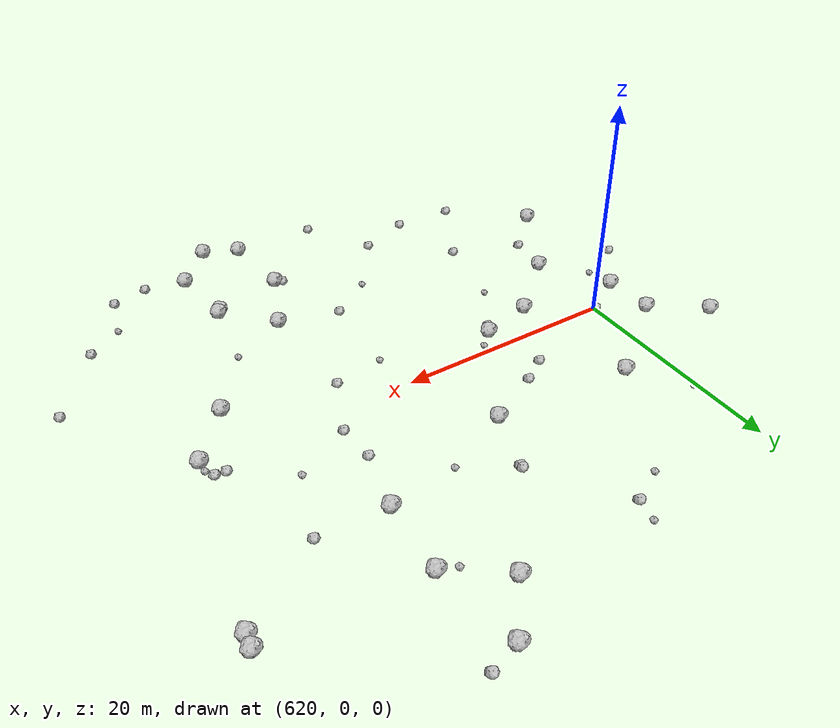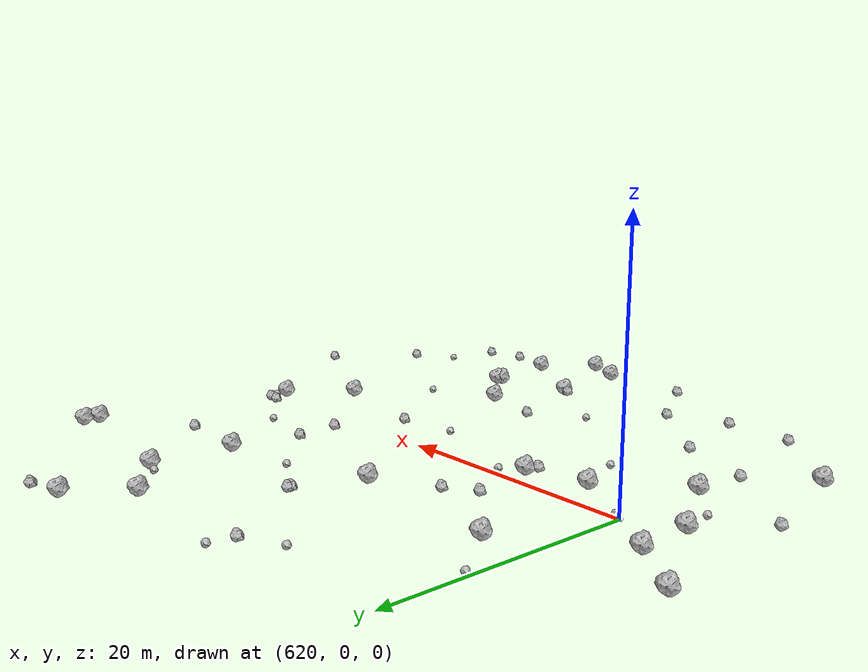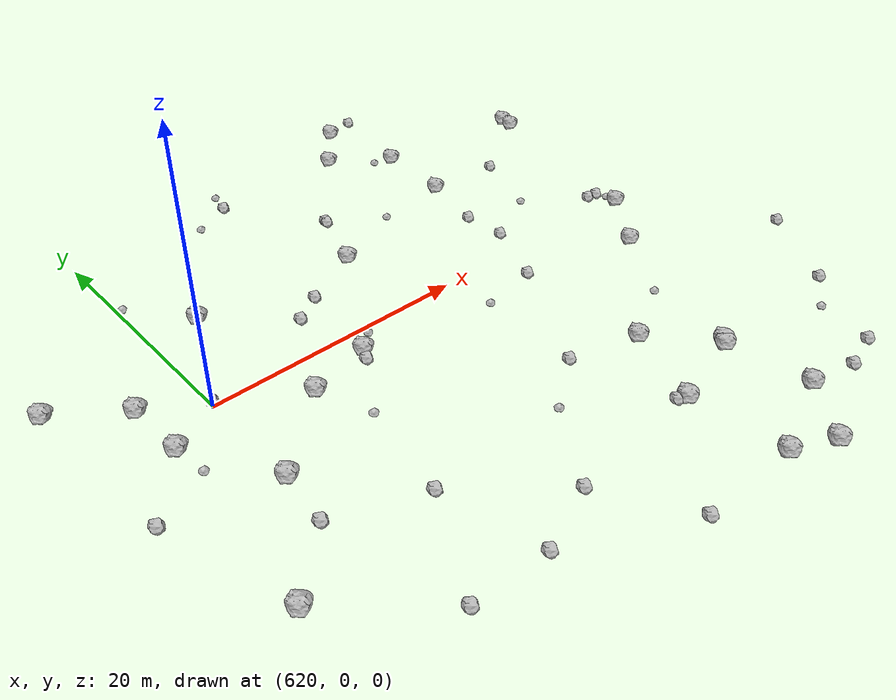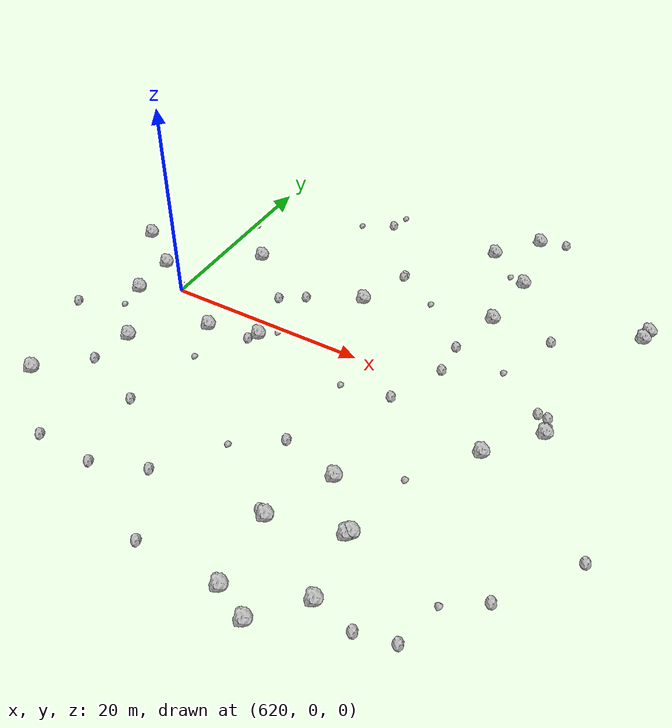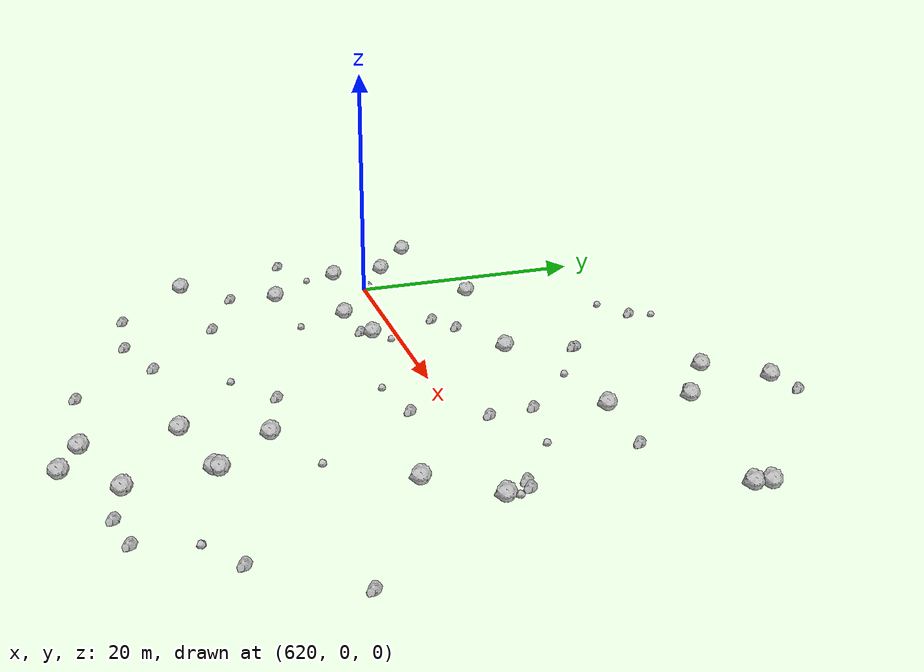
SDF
<sdf version="1.6">
 <world name="default">
  <include><uri>model://sun</uri></include>
  <model name="rock1_16_3">
   <include><uri>model://rock1</uri><pose>648.8438930185555 11.174855994331182 0.5 0 0 0</pose></include>
  </model>
  <model name="rock1_16_4">
   <include><uri>model://rock1</uri><pose>615.3904962493328 -16.14560691493994 0.5 0 0 0</pose></include>
  </model>
  <model name="rock1_16_5">
   <include><uri>model://rock1</uri><pose>662.4316765448751 16.738734639472774 0.5 0 0 0</pose></include>
  </model>
  <model name="rock1_16_6">
   <include><uri>model://rock1</uri><pose>648.1269931408622 25.345043950387605 0.5 0 0 0</pose></include>
  </model>
  <model name="rock1_16_7">
   <include><uri>model://rock1</uri><pose>616.0888381178444 2.6364975542250377 0.5 0 0 0</pose></include>
  </model>
  <model name="rock1_16_8">
   <include><uri>model://rock1</uri><pose>616.3259965709833 -2.0228957796191054 0.5 0 0 0</pose></include>
  </model>
  <model name="rock1_16_9">
   <include><uri>model://rock1</uri><pose>643.7555337426473 -26.524456794241882 0.5 0 0 0</pose></include>
  </model>
  <model name="rock1_16_10">
   <include><uri>model://rock1</uri><pose>654.9367415048175 -5.158462916449565 0.5 0 0 0</pose></include>
  </model>
  <model name="rock1_16_11">
   <include><uri>model://rock1</uri><pose>643.1213336868876 -19.572015310418557 0.5 0 0 0</pose></include>
  </model>
  <model name="rock1_16_12">
   <include><uri>model://rock1</uri><pose>644.7807962973621 21.107663010858822 0.5 0 0 0</pose></include>
  </model>
  <model name="rock1_16_13">
   <include><uri>model://rock1</uri><pose>649.7242200457578 -17.66099810326839 0.5 0 0 0</pose></include>
  </model>
  <model name="rock1_16_14">
   <include><uri>model://rock1</uri><pose>645.7129808615764 -13.478226069675049 0.5 0 0 0</pose></include>
  </model>
  <model name="rock1_16_15">
   <include><uri>model://rock1</uri><pose>646.8986519991554 -27.985347609192065 0.5 0 0 0</pose></include>
  </model>
  <model name="rock1_16_16">
   <include><uri>model://rock1</uri><pose>649.4550491792387 -17.98437619180198 0.5 0 0 0</pose></include>
  </model>
  <model name="rock1_16_17">
   <include><uri>model://rock1</uri><pose>649.3229072091225 17.780898126200555 0.5 0 0 0</pose></include>
  </model>
  <model name="rock1_16_18">
   <include><uri>model://rock1</uri><pose>636.5894042277035 7.6089271394298095 0.5 0 0 0</pose></include>
  </model>
  <model name="rock1_16_19">
   <include><uri>model://rock1</uri><pose>625.7224785144231 -3.2643870966736834 0.5 0 0 0</pose></include>
  </model>
  <model name="rock1_16_20">
   <include><uri>model://rock1</uri><pose>623.9486272056378 8.547645322642829 0.5 0 0 0</pose></include>
  </model>
  <model name="rock1_16_21">
   <include><uri>model://rock1</uri><pose>662.2374766054314 15.511687168198712 0.5 0 0 0</pose></include>
  </model>
  <model name="rock1_16_22">
   <include><uri>model://rock1</uri><pose>658.7171359491284 -0.5328106440331872 0.5 0 0 0</pose></include>
  </model>
  <model name="rock1_16_23">
   <include><uri>model://rock1</uri><pose>611.4127207781443 6.062095399806992 0.5 0 0 0</pose></include>
  </model>
  <model name="rock1_16_24">
   <include><uri>model://rock1</uri><pose>650.3498620861678 -24.109004423143034 0.5 0 0 0</pose></include>
  </model>
  <model name="rock1_16_25">
   <include><uri>model://rock1</uri><pose>620.0788789878984 -8.249276131048351 0.5 0 0 0</pose></include>
  </model>
  <model name="rock1_16_26">
   <include><uri>model://rock1</uri><pose>630.60413584013 -2.011998091361356 0.5 0 0 0</pose></include>
  </model>
  <model name="rock2_16_0">
   <include><uri>model://rock2</uri><pose>658.2653164300514 1.3359258602723472 0.3 0 0 0</pose></include>
  </model>
  <model name="rock2_16_1">
   <include><uri>model://rock2</uri><pose>654.0183311701178 -24.92809306100229 0.3 0 0 0</pose></include>
  </model>
  <model name="rock2_16_2">
   <include><uri>model://rock2</uri><pose>620.0727521601309 0.2806671139498036 0.3 0 0 0</pose></include>
  </model>
  <model name="rock2_16_3">
   <include><uri>model://rock2</uri><pose>612.4482845718904 -6.616863410065008 0.3 0 0 0</pose></include>
  </model>
  <model name="rock2_16_4">
   <include><uri>model://rock2</uri><pose>630.0616784761345 -2.903066993961591 0.3 0 0 0</pose></include>
  </model>
  <model name="rock2_16_5">
   <include><uri>model://rock2</uri><pose>633.2483264709748 20.36103513210123 0.3 0 0 0</pose></include>
  </model>
  <model name="rock2_16_6">
   <include><uri>model://rock2</uri><pose>661.4371350066274 -17.933818349993253 0.3 0 0 0</pose></include>
  </model>
  <model name="rock2_16_7">
   <include><uri>model://rock2</uri><pose>657.2194525123534 -24.18019731390425 0.3 0 0 0</pose></include>
  </model>
  <model name="rock2_16_8">
   <include><uri>model://rock2</uri><pose>631.5537351444437 5.068816908302004 0.3 0 0 0</pose></include>
  </model>
  <model name="rock2_16_9">
   <include><uri>model://rock2</uri><pose>647.5294665153282 5.774056606862608 0.3 0 0 0</pose></include>
  </model>
  <model name="rock2_16_10">
   <include><uri>model://rock2</uri><pose>627.4488237923633 -22.13026600635088 0.3 0 0 0</pose></include>
  </model>
  <model name="rock2_16_11">
   <include><uri>model://rock2</uri><pose>654.9191147814759 10.830465845007517 0.3 0 0 0</pose></include>
  </model>
  <model name="rock2_16_12">
   <include><uri>model://rock2</uri><pose>632.2802439720534 -20.313730426990805 0.3 0 0 0</pose></include>
  </model>
  <model name="rock2_16_13">
   <include><uri>model://rock2</uri><pose>629.2838383866723 3.6036998058606713 0.3 0 0 0</pose></include>
  </model>
  <model name="rock2_16_14">
   <include><uri>model://rock2</uri><pose>657.3476995648704 1.4358226844605113 0.3 0 0 0</pose></include>
  </model>
  <model name="rock2_16_15">
   <include><uri>model://rock2</uri><pose>625.7282943592387 -14.738967857482734 0.3 0 0 0</pose></include>
  </model>
  <model name="rock2_16_16">
   <include><uri>model://rock2</uri><pose>638.3942122900597 13.119152360773924 0.3 0 0 0</pose></include>
  </model>
  <model name="rock2_16_17">
   <include><uri>model://rock2</uri><pose>635.956299362532 -26.400096364083062 0.3 0 0 0</pose></include>
  </model>
  <model name="rock2_16_18">
   <include><uri>model://rock2</uri><pose>621.8418591016358 -21.85417102303533 0.3 0 0 0</pose></include>
  </model>
  <model name="rock2_16_19">
   <include><uri>model://rock2</uri><pose>642.3977085007535 -19.24715776980809 0.3 0 0 0</pose></include>
  </model>
  <model name="rock2_16_20">
   <include><uri>model://rock2</uri><pose>645.3803333566237 -3.0672772088690543 0.3 0 0 0</pose></include>
  </model>
  <model name="rock2_16_21">
   <include><uri>model://rock2</uri><pose>650.7423648440781 26.175084037085448 0.3 0 0 0</pose></include>
  </model>
  <model name="rock2_16_22">
   <include><uri>model://rock2</uri><pose>666.1163161365113 -11.307476723597606 0.3 0 0 0</pose></include>
  </model>
  <model name="rock2_16_23">
   <include><uri>model://rock2</uri><pose>640.215393276929 -11.981019842611175 0.3 0 0 0</pose></include>
  </model>
  <model name="rock2_16_24">
   <include><uri>model://rock2</uri><pose>619.4537258012721 -12.2520360855303 0.3 0 0 0</pose></include>
  </model>
  <model name="rock2_16_25">
   <include><uri>model://rock2</uri><pose>638.3787411916829 12.854375738183315 0.3 0 0 0</pose></include>
  </model>
  <model name="rock2_16_26">
   <include><uri>model://rock2</uri><pose>647.7385862859633 2.2696919077853366 0.3 0 0 0</pose></include>
  </model>
  <model name="rock3_16_0">
   <include><uri>model://rock3</uri><pose>633.6618293583009 22.28556560416625 0.2 0 0 0</pose></include>
  </model>
  <model name="rock3_16_1">
   <include><uri>model://rock3</uri><pose>616.5869215964731 -4.671753450060226 0.2 0 0 0</pose></include>
  </model>
  <model name="rock3_16_2">
   <include><uri>model://rock3</uri><pose>627.144520325636 -7.406732195296662 0.2 0 0 0</pose></include>
  </model>
  <model name="rock3_16_3">
   <include><uri>model://rock3</uri><pose>652.6831899039807 4.762943474901483 0.2 0 0 0</pose></include>
  </model>
  <model name="rock3_16_4">
   <include><uri>model://rock3</uri><pose>642.6174935256655 10.303210972071902 0.2 0 0 0</pose></include>
  </model>
  <model name="rock3_16_5">
   <include><uri>model://rock3</uri><pose>650.7782407831172 -10.871215181136211 0.2 0 0 0</pose></include>
  </model>
  <model name="rock3_16_6">
   <include><uri>model://rock3</uri><pose>636.1626045469104 -14.82154702369085 0.2 0 0 0</pose></include>
  </model>
  <model name="rock3_16_7">
   <include><uri>model://rock3</uri><pose>647.6930048406728 18.27388383700751 0.2 0 0 0</pose></include>
  </model>
  <model name="rock3_16_8">
   <include><uri>model://rock3</uri><pose>620.3758921052462 13.024067746089194 0.2 0 0 0</pose></include>
  </model>
  <model name="rock3_16_9">
   <include><uri>model://rock3</uri><pose>640.6992358044416 -3.946294736581713 0.2 0 0 0</pose></include>
  </model>
  <model name="rock3_16_10">
   <include><uri>model://rock3</uri><pose>658.6631079578873 0.47187517271574464 0.2 0 0 0</pose></include>
  </model>
  <model name="rock3_16_11">
   <include><uri>model://rock3</uri><pose>658.2808936076226 -20.06405565799453 0.2 0 0 0</pose></include>
  </model>
  <model name="rock3_16_12">
   <include><uri>model://rock3</uri><pose>630.1795586452306 18.72873846961376 0.2 0 0 0</pose></include>
  </model>
  <model name="rock3_16_13">
   <include><uri>model://rock3</uri><pose>631.9403196310528 -0.760411860292848 0.2 0 0 0</pose></include>
  </model>
 </world>
</sdf>
